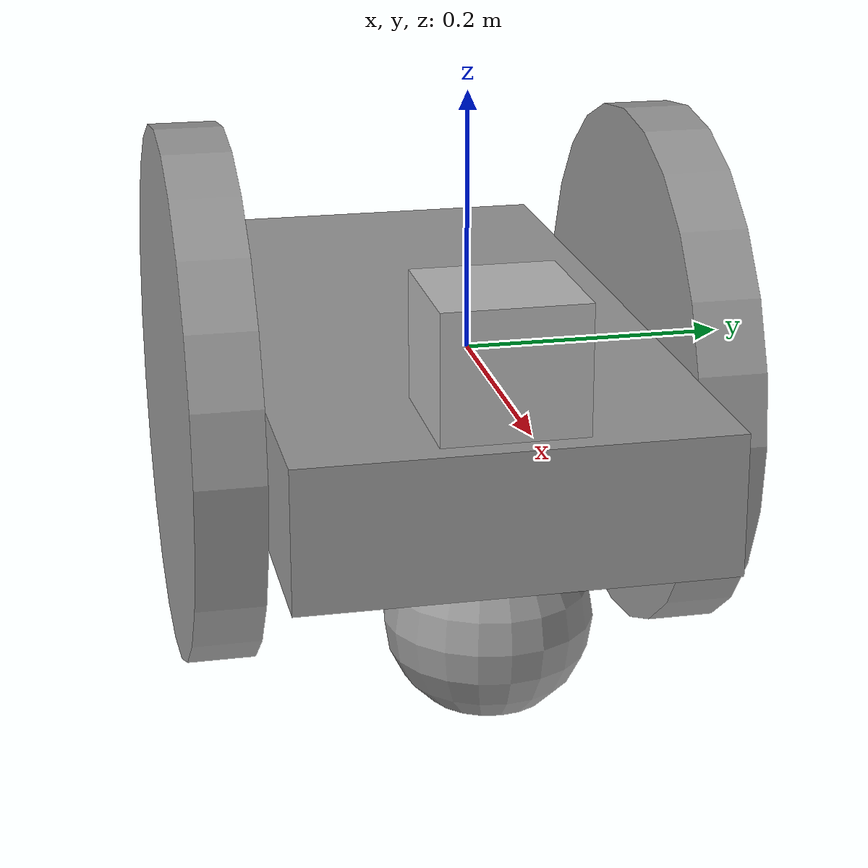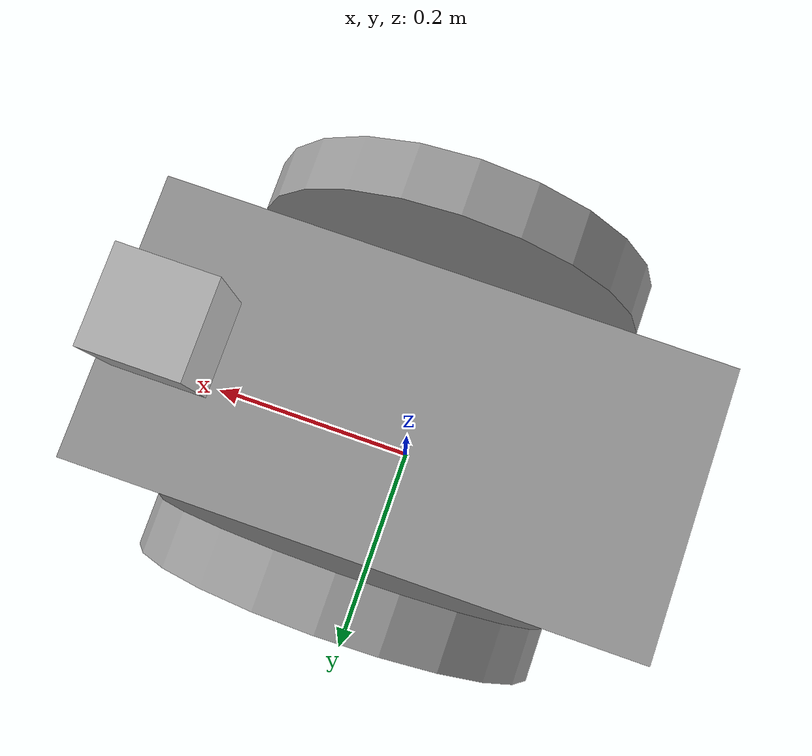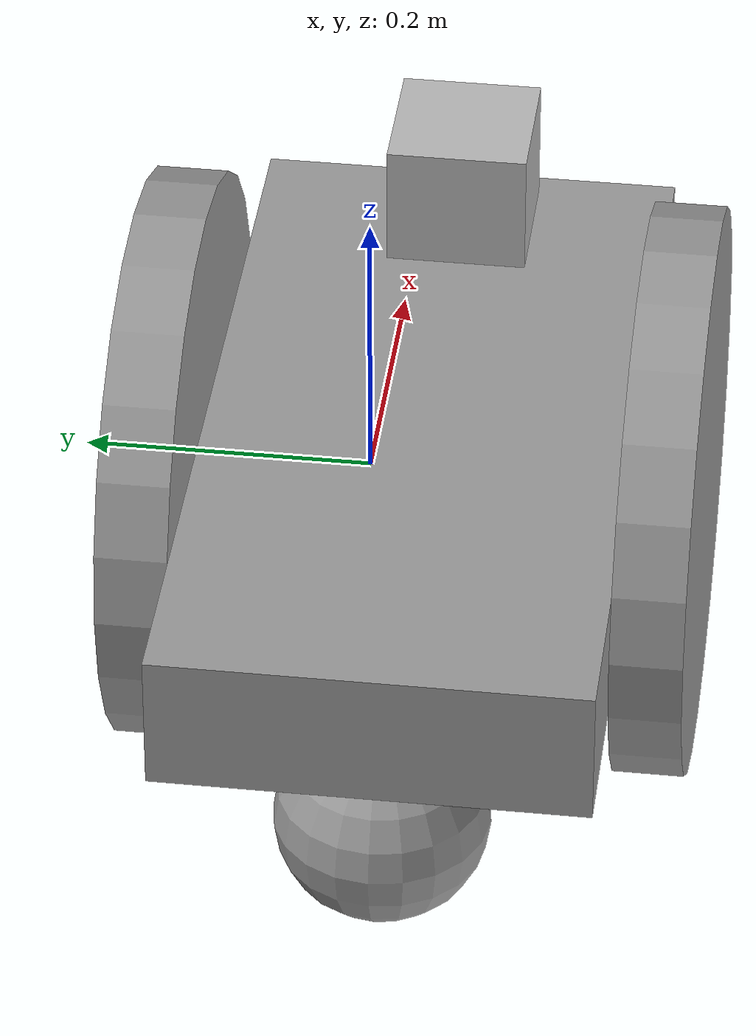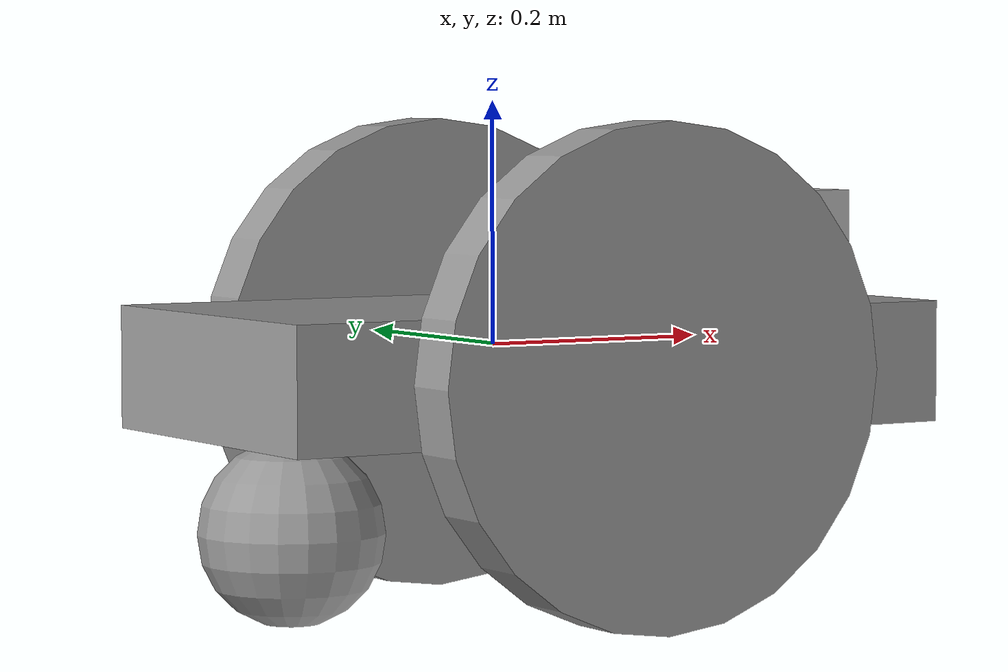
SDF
<?xml version='1.0'?>
<sdf version='1.6'>
  <model name='differential_rob'>
    <link name='link_0'>
      <inertial>
        <mass>1</mass>
        <inertia>
          <ixx>0.166667</ixx>
          <ixy>0</ixy>
          <ixz>0</ixz>
          <iyy>0.166667</iyy>
          <iyz>0</iyz>
          <izz>0.166667</izz>
        </inertia>
        <pose frame=''>0 0 0 0 -0 0</pose>
      </inertial>
      <pose frame=''>0.017523 -0.034711 -0.014942 0 -0 0</pose>
      <gravity>1</gravity>
      <self_collide>0</self_collide>
      <kinematic>0</kinematic>
      <enable_wind>0</enable_wind>
      <visual name='visual'>
        <pose frame=''>0 0 0 0 -0 0</pose>
        <geometry>
          <box>
            <size>0.6 0.3 0.1</size>
          </box>
        </geometry>
        <material>
          <lighting>1</lighting>
          <script>
            <uri>file://media/materials/scripts/gazebo.material</uri>
            <name>Gazebo/Grey</name>
          </script>
          <shader type='vertex'>
            <normal_map>__default__</normal_map>
          </shader>
          <ambient>0.3 0.3 0.3 1</ambient>
          <diffuse>0.7 0.7 0.7 1</diffuse>
          <specular>0.01 0.01 0.01 1</specular>
          <emissive>0 0 0 1</emissive>
        </material>
        <transparency>0</transparency>
        <cast_shadows>1</cast_shadows>
      </visual>
      <collision name='collision'>
        <laser_retro>0</laser_retro>
        <max_contacts>10</max_contacts>
        <pose frame=''>0 0 0 0 -0 0</pose>
        <geometry>
          <box>
            <size>0.6 0.3 0.1</size>
          </box>
        </geometry>
        <surface>
          <friction>
            <ode>
              <mu>1</mu>
              <mu2>1</mu2>
              <fdir1>0 0 0</fdir1>
              <slip1>0</slip1>
              <slip2>0</slip2>
            </ode>
            <torsional>
              <coefficient>1</coefficient>
              <patch_radius>0</patch_radius>
              <surface_radius>0</surface_radius>
              <use_patch_radius>1</use_patch_radius>
              <ode>
                <slip>0</slip>
              </ode>
            </torsional>
          </friction>
          <bounce>
            <restitution_coefficient>0</restitution_coefficient>
            <threshold>1e+06</threshold>
          </bounce>
          <contact>
            <collide_without_contact>0</collide_without_contact>
            <collide_without_contact_bitmask>1</collide_without_contact_bitmask>
            <collide_bitmask>1</collide_bitmask>
            <ode>
              <soft_cfm>0</soft_cfm>
              <soft_erp>0.2</soft_erp>
              <kp>1e+13</kp>
              <kd>1</kd>
              <max_vel>0.01</max_vel>
              <min_depth>0</min_depth>
            </ode>
            <bullet>
              <split_impulse>1</split_impulse>
              <split_impulse_penetration_threshold>-0.01</split_impulse_penetration_threshold>
              <soft_cfm>0</soft_cfm>
              <soft_erp>0.2</soft_erp>
              <kp>1e+13</kp>
              <kd>1</kd>
            </bullet>
          </contact>
        </surface>
      </collision>
    </link>
    <link name='link_1_clone'>
      <inertial>
        <mass>1</mass>
        <inertia>
          <ixx>0.145833</ixx>
          <ixy>0</ixy>
          <ixz>0</ixz>
          <iyy>0.145833</iyy>
          <iyz>0</iyz>
          <izz>0.125</izz>
        </inertia>
        <pose frame=''>0 0 0 0 -0 0</pose>
      </inertial>
      <pose frame=''>0.017523 0.140308 -0.014942 1.5707 -0 0</pose>
      <gravity>1</gravity>
      <self_collide>0</self_collide>
      <kinematic>0</kinematic>
      <enable_wind>0</enable_wind>
      <visual name='visual'>
        <pose frame=''>0 0 0 0 -0 0</pose>
        <geometry>
          <cylinder>
            <radius>0.2</radius>
            <length>0.05</length>
          </cylinder>
        </geometry>
        <material>
          <lighting>1</lighting>
          <script>
            <uri>file://media/materials/scripts/gazebo.material</uri>
            <name>Gazebo/Grey</name>
          </script>
          <shader type='vertex'>
            <normal_map>__default__</normal_map>
          </shader>
          <ambient>0.3 0.3 0.3 1</ambient>
          <diffuse>0.7 0.7 0.7 1</diffuse>
          <specular>0.01 0.01 0.01 1</specular>
          <emissive>0 0 0 1</emissive>
        </material>
        <transparency>0</transparency>
        <cast_shadows>1</cast_shadows>
      </visual>
      <collision name='collision'>
        <laser_retro>0</laser_retro>
        <max_contacts>10</max_contacts>
        <pose frame=''>0 0 0 0 -0 0</pose>
        <geometry>
          <cylinder>
            <radius>0.2</radius>
            <length>0.05</length>
          </cylinder>
        </geometry>
        <surface>
          <friction>
            <ode>
              <mu>1</mu>
              <mu2>1</mu2>
              <fdir1>0 0 0</fdir1>
              <slip1>0</slip1>
              <slip2>0</slip2>
            </ode>
            <torsional>
              <coefficient>1</coefficient>
              <patch_radius>0</patch_radius>
              <surface_radius>0</surface_radius>
              <use_patch_radius>1</use_patch_radius>
              <ode>
                <slip>0</slip>
              </ode>
            </torsional>
          </friction>
          <bounce>
            <restitution_coefficient>0</restitution_coefficient>
            <threshold>1e+06</threshold>
          </bounce>
          <contact>
            <collide_without_contact>0</collide_without_contact>
            <collide_without_contact_bitmask>1</collide_without_contact_bitmask>
            <collide_bitmask>1</collide_bitmask>
            <ode>
              <soft_cfm>0</soft_cfm>
              <soft_erp>0.2</soft_erp>
              <kp>1e+13</kp>
              <kd>1</kd>
              <max_vel>0.01</max_vel>
              <min_depth>0</min_depth>
            </ode>
            <bullet>
              <split_impulse>1</split_impulse>
              <split_impulse_penetration_threshold>-0.01</split_impulse_penetration_threshold>
              <soft_cfm>0</soft_cfm>
              <soft_erp>0.2</soft_erp>
              <kp>1e+13</kp>
              <kd>1</kd>
            </bullet>
          </contact>
        </surface>
      </collision>
    </link>
    <link name='link_1_clone_clone'>
      <inertial>
        <mass>1</mass>
        <inertia>
          <ixx>0.145833</ixx>
          <ixy>0</ixy>
          <ixz>0</ixz>
          <iyy>0.145833</iyy>
          <iyz>0</iyz>
          <izz>0.125</izz>
        </inertia>
        <pose frame=''>0 0 0 0 -0 0</pose>
      </inertial>
      <pose frame=''>0.017523 -0.20973 -0.014942 1.5707 -0 0</pose>
      <gravity>1</gravity>
      <self_collide>0</self_collide>
      <kinematic>0</kinematic>
      <enable_wind>0</enable_wind>
      <visual name='visual'>
        <pose frame=''>0 0 0 0 -0 0</pose>
        <geometry>
          <cylinder>
            <radius>0.2</radius>
            <length>0.05</length>
          </cylinder>
        </geometry>
        <material>
          <lighting>1</lighting>
          <script>
            <uri>file://media/materials/scripts/gazebo.material</uri>
            <name>Gazebo/Grey</name>
          </script>
          <shader type='vertex'>
            <normal_map>__default__</normal_map>
          </shader>
          <ambient>0.3 0.3 0.3 1</ambient>
          <diffuse>0.7 0.7 0.7 1</diffuse>
          <specular>0.01 0.01 0.01 1</specular>
          <emissive>0 0 0 1</emissive>
        </material>
        <transparency>0</transparency>
        <cast_shadows>1</cast_shadows>
      </visual>
      <collision name='collision'>
        <laser_retro>0</laser_retro>
        <max_contacts>10</max_contacts>
        <pose frame=''>0 0 0 0 -0 0</pose>
        <geometry>
          <cylinder>
            <radius>0.2</radius>
            <length>0.05</length>
          </cylinder>
        </geometry>
        <surface>
          <friction>
            <ode>
              <mu>1</mu>
              <mu2>1</mu2>
              <fdir1>0 0 0</fdir1>
              <slip1>0</slip1>
              <slip2>0</slip2>
            </ode>
            <torsional>
              <coefficient>1</coefficient>
              <patch_radius>0</patch_radius>
              <surface_radius>0</surface_radius>
              <use_patch_radius>1</use_patch_radius>
              <ode>
                <slip>0</slip>
              </ode>
            </torsional>
          </friction>
          <bounce>
            <restitution_coefficient>0</restitution_coefficient>
            <threshold>1e+06</threshold>
          </bounce>
          <contact>
            <collide_without_contact>0</collide_without_contact>
            <collide_without_contact_bitmask>1</collide_without_contact_bitmask>
            <collide_bitmask>1</collide_bitmask>
            <ode>
              <soft_cfm>0</soft_cfm>
              <soft_erp>0.2</soft_erp>
              <kp>1e+13</kp>
              <kd>1</kd>
              <max_vel>0.01</max_vel>
              <min_depth>0</min_depth>
            </ode>
            <bullet>
              <split_impulse>1</split_impulse>
              <split_impulse_penetration_threshold>-0.01</split_impulse_penetration_threshold>
              <soft_cfm>0</soft_cfm>
              <soft_erp>0.2</soft_erp>
              <kp>1e+13</kp>
              <kd>1</kd>
            </bullet>
          </contact>
        </surface>
      </collision>
    </link>
    <link name='link_2'>
      <inertial>
        <mass>1</mass>
        <inertia>
          <ixx>0.1</ixx>
          <ixy>0</ixy>
          <ixz>0</ixz>
          <iyy>0.1</iyy>
          <iyz>0</iyz>
          <izz>0.1</izz>
        </inertia>
        <pose frame=''>0 0 0 0 -0 0</pose>
      </inertial>
      <pose frame=''>0.177523 -0.024711 -0.139942 0 -0 0</pose>
      <gravity>1</gravity>
      <self_collide>0</self_collide>
      <kinematic>0</kinematic>
      <enable_wind>0</enable_wind>
      <visual name='visual'>
        <pose frame=''>0 0 0 0 -0 0</pose>
        <geometry>
          <sphere>
            <radius>0.075</radius>
          </sphere>
        </geometry>
        <material>
          <lighting>1</lighting>
          <script>
            <uri>file://media/materials/scripts/gazebo.material</uri>
            <name>Gazebo/Grey</name>
          </script>
          <shader type='vertex'>
            <normal_map>__default__</normal_map>
          </shader>
          <ambient>0.3 0.3 0.3 1</ambient>
          <diffuse>0.7 0.7 0.7 1</diffuse>
          <specular>0.01 0.01 0.01 1</specular>
          <emissive>0 0 0 1</emissive>
        </material>
        <transparency>0</transparency>
        <cast_shadows>1</cast_shadows>
      </visual>
      <collision name='collision'>
        <laser_retro>0</laser_retro>
        <max_contacts>10</max_contacts>
        <pose frame=''>0 0 0 0 -0 0</pose>
        <geometry>
          <sphere>
            <radius>0.075</radius>
          </sphere>
        </geometry>
        <surface>
          <friction>
            <ode>
              <mu>1</mu>
              <mu2>1</mu2>
              <fdir1>0 0 0</fdir1>
              <slip1>0</slip1>
              <slip2>0</slip2>
            </ode>
            <torsional>
              <coefficient>1</coefficient>
              <patch_radius>0</patch_radius>
              <surface_radius>0</surface_radius>
              <use_patch_radius>1</use_patch_radius>
              <ode>
                <slip>0</slip>
              </ode>
            </torsional>
          </friction>
          <bounce>
            <restitution_coefficient>0</restitution_coefficient>
            <threshold>1e+06</threshold>
          </bounce>
          <contact>
            <collide_without_contact>0</collide_without_contact>
            <collide_without_contact_bitmask>1</collide_without_contact_bitmask>
            <collide_bitmask>1</collide_bitmask>
            <ode>
              <soft_cfm>0</soft_cfm>
              <soft_erp>0.2</soft_erp>
              <kp>1e+13</kp>
              <kd>1</kd>
              <max_vel>0.01</max_vel>
              <min_depth>0</min_depth>
            </ode>
            <bullet>
              <split_impulse>1</split_impulse>
              <split_impulse_penetration_threshold>-0.01</split_impulse_penetration_threshold>
              <soft_cfm>0</soft_cfm>
              <soft_erp>0.2</soft_erp>
              <kp>1e+13</kp>
              <kd>1</kd>
            </bullet>
          </contact>
        </surface>
      </collision>
    </link>
    <link name='link_2_clone'>
      <inertial>
        <mass>1</mass>
        <inertia>
          <ixx>0.1</ixx>
          <ixy>0</ixy>
          <ixz>0</ixz>
          <iyy>0.1</iyy>
          <iyz>0</iyz>
          <izz>0.1</izz>
        </inertia>
        <pose frame=''>0 0 0 0 -0 0</pose>
      </inertial>
      <pose frame=''>-0.207477 -0.034711 -0.139942 0 -0 0</pose>
      <gravity>1</gravity>
      <self_collide>0</self_collide>
      <kinematic>0</kinematic>
      <enable_wind>0</enable_wind>
      <visual name='visual'>
        <pose frame=''>0 0 0 0 -0 0</pose>
        <geometry>
          <sphere>
            <radius>0.075</radius>
          </sphere>
        </geometry>
        <material>
          <lighting>1</lighting>
          <script>
            <uri>file://media/materials/scripts/gazebo.material</uri>
            <name>Gazebo/Grey</name>
          </script>
          <shader type='vertex'>
            <normal_map>__default__</normal_map>
          </shader>
          <ambient>0.3 0.3 0.3 1</ambient>
          <diffuse>0.7 0.7 0.7 1</diffuse>
          <specular>0.01 0.01 0.01 1</specular>
          <emissive>0 0 0 1</emissive>
        </material>
        <transparency>0</transparency>
        <cast_shadows>1</cast_shadows>
      </visual>
      <collision name='collision'>
        <laser_retro>0</laser_retro>
        <max_contacts>10</max_contacts>
        <pose frame=''>0 0 0 0 -0 0</pose>
        <geometry>
          <sphere>
            <radius>0.075</radius>
          </sphere>
        </geometry>
        <surface>
          <friction>
            <ode>
              <mu>1</mu>
              <mu2>1</mu2>
              <fdir1>0 0 0</fdir1>
              <slip1>0</slip1>
              <slip2>0</slip2>
            </ode>
            <torsional>
              <coefficient>1</coefficient>
              <patch_radius>0</patch_radius>
              <surface_radius>0</surface_radius>
              <use_patch_radius>1</use_patch_radius>
              <ode>
                <slip>0</slip>
              </ode>
            </torsional>
          </friction>
          <bounce>
            <restitution_coefficient>0</restitution_coefficient>
            <threshold>1e+06</threshold>
          </bounce>
          <contact>
            <collide_without_contact>0</collide_without_contact>
            <collide_without_contact_bitmask>1</collide_without_contact_bitmask>
            <collide_bitmask>1</collide_bitmask>
            <ode>
              <soft_cfm>0</soft_cfm>
              <soft_erp>0.2</soft_erp>
              <kp>1e+13</kp>
              <kd>1</kd>
              <max_vel>0.01</max_vel>
              <min_depth>0</min_depth>
            </ode>
            <bullet>
              <split_impulse>1</split_impulse>
              <split_impulse_penetration_threshold>-0.01</split_impulse_penetration_threshold>
              <soft_cfm>0</soft_cfm>
              <soft_erp>0.2</soft_erp>
              <kp>1e+13</kp>
              <kd>1</kd>
            </bullet>
          </contact>
        </surface>
      </collision>
    </link>
    <model name='depth_camera'>
      <link name='link'>
        <pose frame=''>0 0 0.05 0 -0 0</pose>
        <inertial>
          <mass>0.1</mass>
          <inertia>
            <ixx>0.000166667</ixx>
            <iyy>0.000166667</iyy>
            <izz>0.000166667</izz>
            <ixy>0</ixy>
            <ixz>0</ixz>
            <iyz>0</iyz>
          </inertia>
        </inertial>
        <collision name='collision'>
          <geometry>
            <box>
              <size>0.1 0.1 0.1</size>
            </box>
          </geometry>
        </collision>
        <visual name='visual'>
          <geometry>
            <box>
              <size>0.1 0.1 0.1</size>
            </box>
          </geometry>
        </visual>
        <sensor name='camera' type='depth'>
          <camera name='__default__'>
            <horizontal_fov>1.047</horizontal_fov>
            <image>
              <width>320</width>
              <height>240</height>
            </image>
            <clip>
              <near>0.1</near>
              <far>100</far>
            </clip>
          </camera>
          <always_on>1</always_on>
          <update_rate>30</update_rate>
          <visualize>1</visualize>
        </sensor>
      </link>
      <pose frame=''>0.251419 -0.035884 0.024712 0 -0 0</pose>
    </model>
    <joint name='link_0_JOINT_2' type='revolute'>
      <parent>link_0</parent>
      <child>link_1_clone</child>
      <pose frame=''>0 0 0 0 -0 0</pose>
      <axis>
        <xyz>0 0 1</xyz>
        <use_parent_model_frame>0</use_parent_model_frame>
        <limit>
          <lower>-1.79769e+308</lower>
          <upper>1.79769e+308</upper>
          <effort>-1</effort>
          <velocity>-1</velocity>
        </limit>
        <dynamics>
          <spring_reference>0</spring_reference>
          <spring_stiffness>0</spring_stiffness>
          <damping>0</damping>
        </dynamics>
      </axis>
      <physics>
        <ode>
          <limit>
            <cfm>0</cfm>
            <erp>0.2</erp>
          </limit>
          <suspension>
            <cfm>0</cfm>
            <erp>0.2</erp>
          </suspension>
        </ode>
      </physics>
    </joint>
    <joint name='link_0_JOINT_3' type='revolute'>
      <parent>link_0</parent>
      <child>link_1_clone_clone</child>
      <pose frame=''>0 0 0 0 -0 0</pose>
      <axis>
        <xyz>0 0 1</xyz>
        <use_parent_model_frame>0</use_parent_model_frame>
        <limit>
          <lower>-1.79769e+308</lower>
          <upper>1.79769e+308</upper>
          <effort>-1</effort>
          <velocity>-1</velocity>
        </limit>
        <dynamics>
          <spring_reference>0</spring_reference>
          <spring_stiffness>0</spring_stiffness>
          <damping>0</damping>
        </dynamics>
      </axis>
      <physics>
        <ode>
          <limit>
            <cfm>0</cfm>
            <erp>0.2</erp>
          </limit>
          <suspension>
            <cfm>0</cfm>
            <erp>0.2</erp>
          </suspension>
        </ode>
      </physics>
    </joint>
    <joint name='link_0_JOINT_5' type='ball'>
      <parent>link_0</parent>
      <child>link_2_clone</child>
      <pose frame=''>0 0 0 0 -0 0</pose>
      <physics>
        <ode>
          <limit>
            <cfm>0</cfm>
            <erp>0.2</erp>
          </limit>
          <suspension>
            <cfm>0</cfm>
            <erp>0.2</erp>
          </suspension>
        </ode>
      </physics>
    </joint>
    <joint name='link_0_JOINT_6' type='ball'>
      <parent>link_0</parent>
      <child>link_2</child>
      <pose frame=''>0 0 0 0 -0 0</pose>
      <physics>
        <ode>
          <limit>
            <cfm>0</cfm>
            <erp>0.2</erp>
          </limit>
          <suspension>
            <cfm>0</cfm>
            <erp>0.2</erp>
          </suspension>
        </ode>
      </physics>
    </joint>
    <joint name='link_0_JOINT_7' type='fixed'>
      <parent>link_0</parent>
      <child>depth_camera::link</child>
      <pose frame=''>0 0 0 0 -0 0</pose>
      <physics>
        <ode>
          <limit>
            <cfm>0</cfm>
            <erp>0.2</erp>
          </limit>
          <suspension>
            <cfm>0</cfm>
            <erp>0.2</erp>
          </suspension>
        </ode>
      </physics>
    </joint>
    <static>0</static>
    <allow_auto_disable>1</allow_auto_disable>
  </model>
</sdf>
